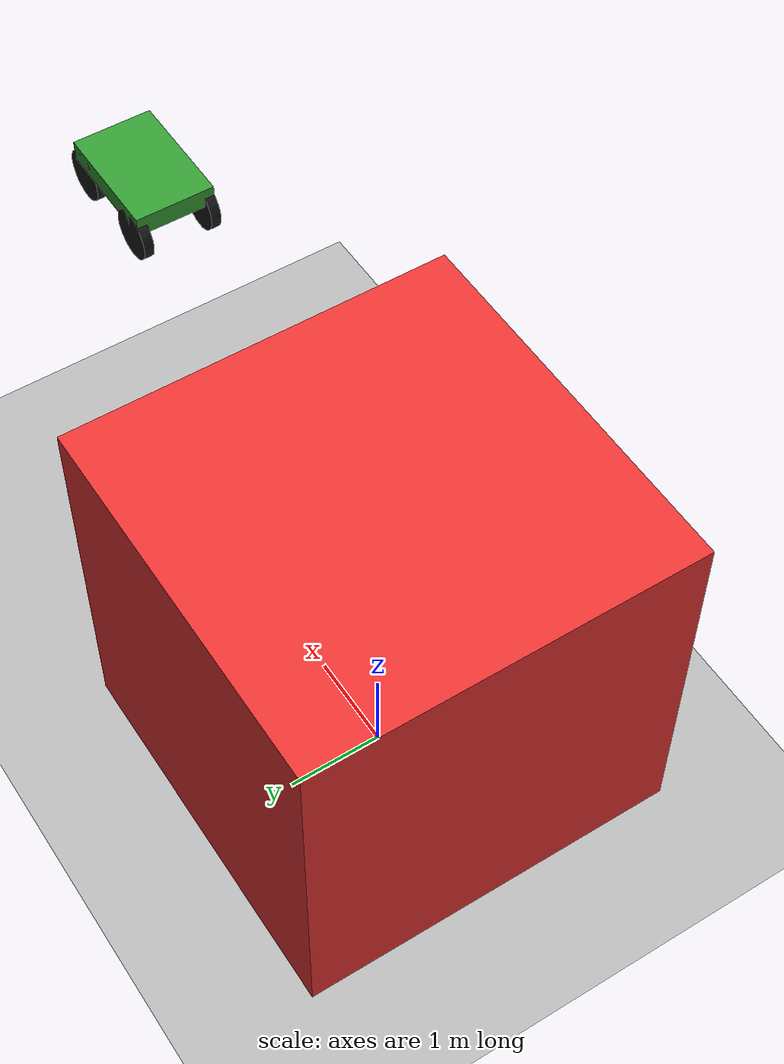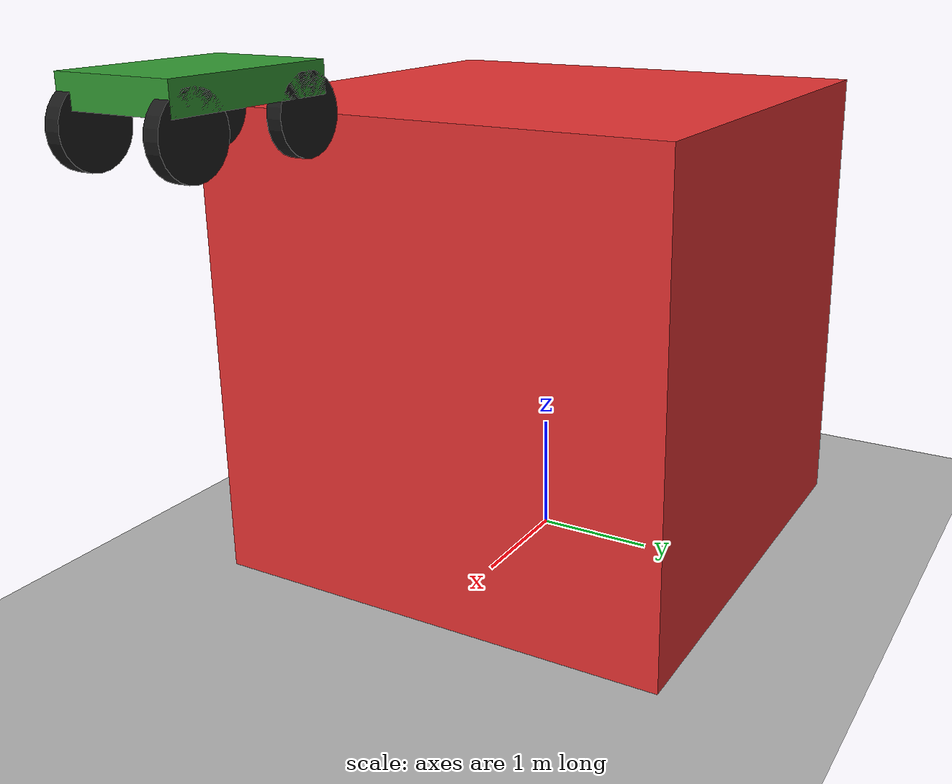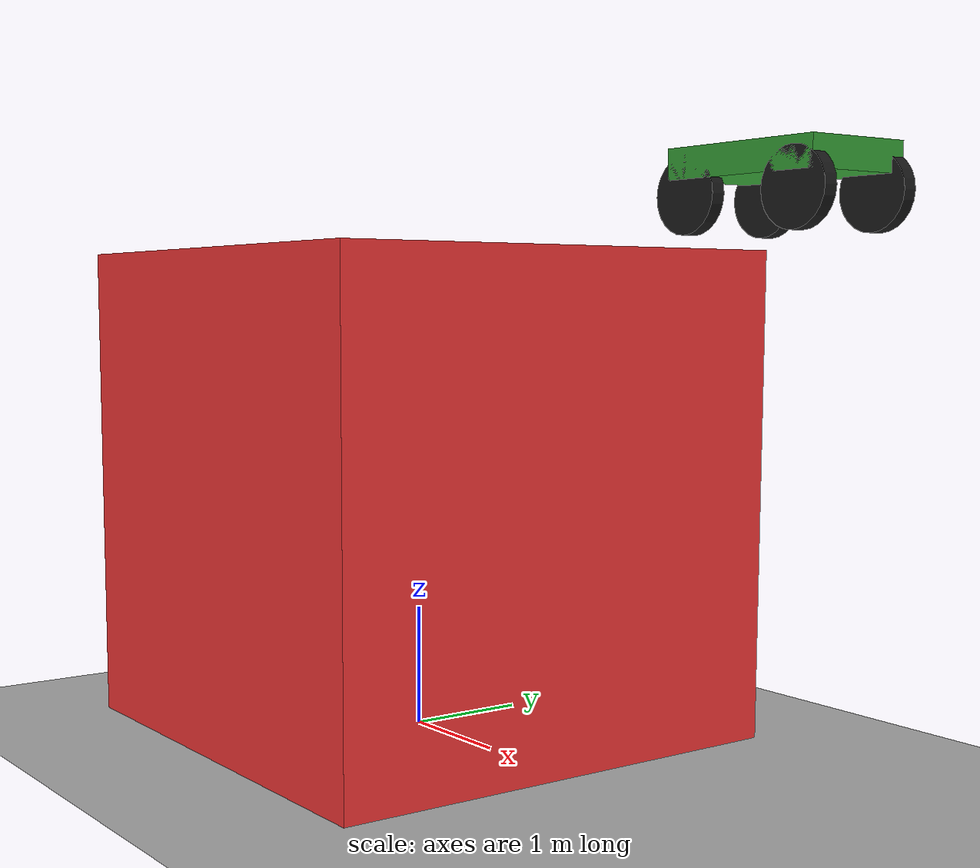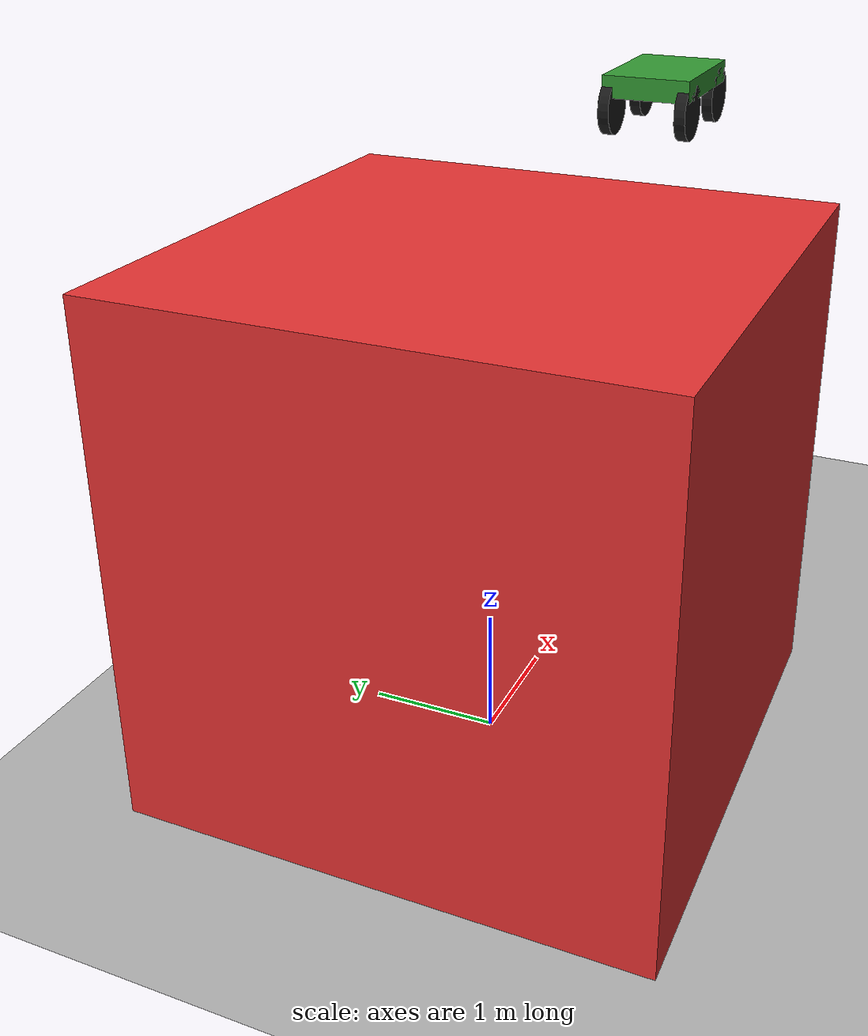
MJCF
<mujoco model="four_wheel_base">
	<option timestep="0.001" gravity="0 0 -9.81"/>

	<worldbody>
		<geom name="floor" type="plane" size="10 10 0.1" rgba="0.7 0.7 0.7 1"
			friction="1.0 0.01 0.001"/>

		<!-- table -->
		<body name="table" pos="0 0 2">
		<geom name="table_top" type="box" size="2 2 2" rgba="0.9 0.2 0.2 1"
				friction="1.0 0.01 0.001"/>
		</body>

		<!-- 4-wheel robot -->
		<body name="car" pos="4 0 4.25">
		<freejoint name="chassis_free"/>

		<!-- robot chassis -->
		<geom name="chassis" type="box" size="0.6 0.4 0.1" pos="0 0 0.20"
				mass="20" rgba="0.2 0.6 0.2 1"/>

		<site name="chassis_site" pos="0 0 0" size="0.01"/>

		<!-- wheel params -->
		<!-- wheel radius=0.25, wheel width half=0.05 wheel mass=2-->
		<!-- Track length 0.9, wheelbase 0.7 -->

		<body name="wheel_fl" pos=" 0.45  0.35 0">
			<joint name="j_fl" type="hinge" axis="0 1 0" limited="false"/>
			<geom name="g_fl" type="cylinder" size="0.25 0.05" euler="90 0 0"
				mass="2" friction="1 0.01 0.001" rgba="0.1 0.1 0.1 1"/>
		</body>

		<body name="wheel_fr" pos=" 0.45 -0.35 0">
			<joint name="j_fr" type="hinge" axis="0 1 0" limited="false"/>
			<geom name="g_fr" type="cylinder" size="0.25 0.05" euler="90 0 0"
				mass="2" friction="1 0.01 0.001" rgba="0.1 0.1 0.1 1"/>
		</body>

		<body name="wheel_rl" pos="-0.45  0.35 0">
			<joint name="j_rl" type="hinge" axis="0 1 0" limited="false"/>
			<geom name="g_rl" type="cylinder" size="0.25 0.05" euler="90 0 0"
				mass="2" friction="1 0.01 0.001" rgba="0.1 0.1 0.1 1"/>
		</body>

		<body name="wheel_rr" pos="-0.45 -0.35 0">
			<joint name="j_rr" type="hinge" axis="0 1 0" limited="false"/>
			<geom name="g_rr" type="cylinder" size="0.25 0.05" euler="90 0 0"
				mass="2" friction="1 0.01 0.001" rgba="0.1 0.1 0.1 1"/>
		</body>
		</body>
	</worldbody>

  <!-- Actuators: pick ONE style -->
	<actuator>
		<!-- A) Torque motors (Nm) -->
		<motor  name="m_fl" joint="j_fl" gear="100" ctrlrange="-1 1"/>
		<motor  name="m_fr" joint="j_fr" gear="100" ctrlrange="-1 1"/>
		<motor  name="m_rl" joint="j_rl" gear="100" ctrlrange="-1 1"/>
		<motor  name="m_rr" joint="j_rr" gear="100" ctrlrange="-1 1"/>
	</actuator>

	<!-- Sensors -->
	<sensor>
		<!-- Chassis pose (world frame) -->
		<framepos  name="chassis_pos"  objtype="site" objname="chassis_site"/>
		<framequat name="chassis_quat" objtype="site" objname="chassis_site"/>

		<!-- Easy sanity checks: wheel angular speeds -->
		<jointvel name="w_fl" joint="j_fl"/>
		<jointvel name="w_fr" joint="j_fr"/>
		<jointvel name="w_rl" joint="j_rl"/>
		<jointvel name="w_rr" joint="j_rr"/>
	</sensor>

</mujoco>
